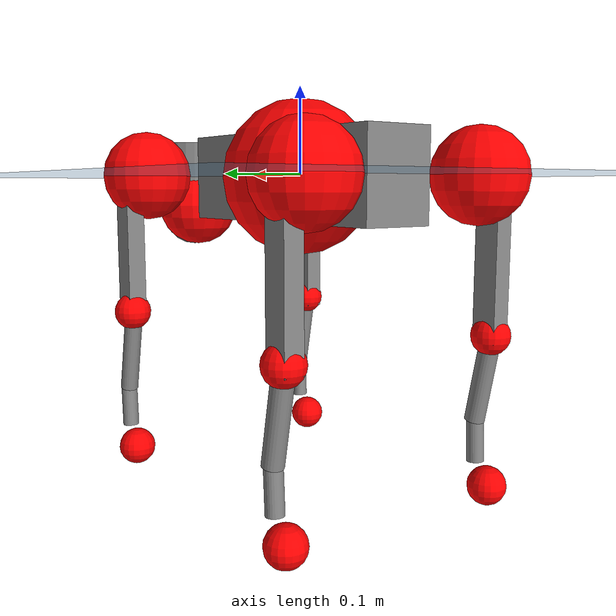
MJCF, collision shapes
<mujoco model="go2">
  <compiler angle="radian" assetdir="assets" balanceinertia="true" inertiafromgeom="false"/>

  <option timestep="0.005" density="1.2" viscosity="2e-05"/>

  <size nkey="1"/>

  <visual>
    <quality shadowsize="8192"/>
    <map shadowclip="0.5"/>
  </visual>

  <default>
    <default class="/">
      <geom contype="0" conaffinity="0" group="1" solref="-1000 -80"/>
      <site size="0.01 0.005 0.005" group="5"/>
      <general forcelimited="true" biastype="affine" gainprm="20" biasprm="0 -20 -0.5"/>
      <default class="go2">
        <joint armature="0.01" damping="0.01" frictionloss="0.2"/>
        <geom condim="1" margin="0.001"/>
        <default class="visual">
          <geom type="mesh" group="2"/>
        </default>
        <default class="collision">
          <geom group="3"/>
          <default class="foot">
            <geom size="0.022 0 0" condim="6" priority="1" friction="0.8 0.02 0.01" solimp="0.015 1 0.022"/>
          </default>
        </default>
        <default class="reward_collision_sphere">
          <geom group="5" rgba="1 0 0 1"/>
        </default>
      </default>
    </default>
  </default>

  <asset>
    <texture type="skybox" colorspace="auto" name="//unnamed_texture_0" builtin="gradient" rgb1="0.95 0.95 0.95" rgb2="0.95 0.95 0.95" width="100" height="600"/>
    <texture type="2d" colorspace="auto" name="texplane" builtin="checker" rgb1="0.345 0.575 0.748" rgb2="0.345 0.575 0.748" markrgb="1 1 1" width="512" height="512"/>
    <material name="MatPlane" class="/" texture="texplane" texuniform="true" texrepeat="2 2" specular="0.9"/>
    <material name="metal" class="/" rgba="0.9 0.95 0.95 1"/>
    <material name="black" class="/" rgba="0 0 0 1"/>
    <material name="white" class="/"/>
    <material name="gray" class="/" rgba="0.671705 0.692426 0.77427 1"/>
    <mesh name="base_0" class="/" file="base_0.obj"/>
    <mesh name="base_1" class="/" file="base_1.obj"/>
    <mesh name="base_2" class="/" file="base_2.obj"/>
    <mesh name="base_3" class="/" file="base_3.obj"/>
    <mesh name="base_4" class="/" file="base_4.obj"/>
    <mesh name="hip_0" class="/" file="hip_0.obj"/>
    <mesh name="hip_1" class="/" file="hip_1.obj"/>
    <mesh name="thigh_0" class="/" file="thigh_0.obj"/>
    <mesh name="thigh_1" class="/" file="thigh_1.obj"/>
    <mesh name="thigh_mirror_0" class="/" file="thigh_mirror_0.obj"/>
    <mesh name="thigh_mirror_1" class="/" file="thigh_mirror_1.obj"/>
    <mesh name="calf_0" class="/" file="calf_0.obj"/>
    <mesh name="calf_1" class="/" file="calf_1.obj"/>
    <mesh name="calf_mirror_0" class="/" file="calf_mirror_0.obj"/>
    <mesh name="calf_mirror_1" class="/" file="calf_mirror_1.obj"/>
    <mesh name="foot" class="/" file="foot.obj"/>
  </asset>

  <worldbody>
    <geom name="floor" class="/" size="100 100 0.125" type="plane" group="0" material="MatPlane"/>
    <light name="toplight_shadow" class="/" pos="0 0 5" dir="0.0990148 0.0990148 -0.990148" type="directional" ambient="0.04 0.04 0.04" diffuse="0.55 0.55 0.55" specular="0.12 0.12 0.12"/>
    <light name="toplight_fill" class="/" pos="0 0 5" dir="0.0990148 0.0990148 -0.990148" type="directional" castshadow="false" ambient="0.04 0.04 0.04" diffuse="0.3 0.3 0.3" specular="0.08 0.08 0.08"/>
    <body name="trunk" childclass="go2" pos="0.000132769 -0.000146841 -0.0028261" quat="1 -0.000191752 -2.69023e-05 8.27534e-06">
      <inertial pos="0.0176577 0.00162566 -0.00182296" quat="-0.00067403 0.713303 -0.00207304 0.700852" mass="4.8879" diaginertia="0.0602691 0.0876086 0.00906102"/>
      <joint name="//unnamed_joint_0" type="free" armature="0" damping="0" frictionloss="0"/>
      <geom name="//unnamed_geom_1" class="visual" material="black" mesh="base_0"/>
      <geom name="//unnamed_geom_2" class="visual" material="black" mesh="base_1"/>
      <geom name="//unnamed_geom_3" class="visual" material="black" mesh="base_2"/>
      <geom name="//unnamed_geom_4" class="visual" material="white" mesh="base_3"/>
      <geom name="//unnamed_geom_5" class="visual" material="gray" mesh="base_4"/>
      <geom name="trunk_1" class="collision" size="0.169414 0.0421059 0.0513377" type="box"/>
      <geom name="trunk_2" class="collision" size="0.045033 0.0405297" pos="0.254187 0 0.00823783" type="cylinder"/>
      <geom name="trunk_3" class="collision" size="0.042331" pos="0.261322 0 -0.049427"/>
      <geom name="//unnamed_geom_9" class="reward_collision_sphere" size="0.0900661"/>
      <geom name="//unnamed_geom_10" class="reward_collision_sphere" size="0.0540396" pos="0.249728 0 -0.0370703"/>
      <site name="imu" pos="-0.015727 -0.0131787 0.0431705" size="0.00900661"/>
      <camera name="track" pos="0 -1.97263 0" quat="0.707107 0.707107 0 0" mode="trackcom"/>
      <camera name="ego_camera" pos="0.278268 0 0.0370703" quat="-0.5 -0.5 0.5 0.5"/>
      <body name="FL_hip" pos="0.172863 0.0431986 0.00238055" quat="1 -0.000204639 0.000105678 0.000135862">
        <inertial pos="-0.00710447 0.00273289 -0.00275614" quat="0.49785 0.496915 0.504244 0.500958" mass="0.486556" diaginertia="0.000494409 0.000532504 0.000186158"/>
        <joint name="FL_hip_joint" pos="0 0 0" axis="0.999989 -0.00133496 -0.00449556" range="-1.08947 1.04218" armature="0.0103271" damping="0.0189171" frictionloss="0.157508"/>
        <geom name="//unnamed_geom_11" class="visual" material="metal" mesh="hip_0"/>
        <geom name="//unnamed_geom_12" class="visual" material="gray" mesh="hip_1"/>
        <geom name="//unnamed_geom_13" class="collision" size="0.0414304 0.0180132" pos="0 0.0789051 0" quat="0.707107 0.707107 0 0" type="cylinder"/>
        <geom name="//unnamed_geom_14" class="reward_collision_sphere" size="0.0540396" pos="0 0.0690419 0"/>
        <body name="FL_thigh" pos="-0.00014036 0.0937817 0.00335181" quat="1 3.87185e-05 -0.000175564 0.000284618">
          <inertial pos="-0.00340935 -0.0221363 -0.0293926" quat="0.829481 0.0863443 -0.0173152 0.551548" mass="0.822469" diaginertia="0.00333972 0.00548076 0.000318775"/>
          <joint name="FL_thigh_joint" pos="0 0 0" axis="0.00845139 0.999884 -0.0126629" range="-1.62772 3.53711" armature="0.00924554" damping="0.00724398" frictionloss="0.170692"/>
          <geom name="//unnamed_geom_15" class="visual" material="metal" mesh="thigh_0"/>
          <geom name="//unnamed_geom_16" class="visual" material="gray" mesh="thigh_1"/>
          <geom name="//unnamed_geom_17" class="collision" size="0.0959203 0.0110331 0.0153112" pos="0 0 -0.0877329" quat="0.707107 0 0.707107 0" type="box"/>
          <body name="FL_calf" pos="-0.0036705 0.00209833 -0.172959" quat="1 -0.000112323 -0.000776314 0.00056783">
            <inertial pos="0.00672915 -0.000515 -0.116205" quat="0.710747 0.00183176 -0.00491162 0.703428" mass="0.166844" diaginertia="0.00083951 0.00135644 1.92215e-05"/>
            <joint name="FL_calf_joint" pos="0 0 0" axis="-0.00416452 0.999948 0.0093153" range="-2.74284 -0.828025" armature="0.00813459" damping="0.0177175" frictionloss="0.154793"/>
            <geom name="//unnamed_geom_18" class="visual" material="gray" mesh="calf_0"/>
            <geom name="//unnamed_geom_19" class="visual" material="black" mesh="calf_1"/>
            <geom name="FL_calf0" class="collision" size="0.0108079 0.0540396" pos="0.00713508 0 -0.049427" quat="0.994493 0 -0.104807 0" type="cylinder"/>
            <geom name="//unnamed_geom_21" class="collision" size="0.00990727 0.0292715" pos="0.0178377 0 -0.12192" quat="0.999688 0 0.0249974 0" type="cylinder"/>
            <geom name="//unnamed_geom_22" class="visual" pos="0 0 -0.175466" quat="1 0 0 0" material="black" mesh="foot"/>
            <geom name="FL_foot" class="foot" size="0.0180523" pos="-0.00178377 0 -0.175466"/>
            <geom name="//unnamed_geom_24" class="reward_collision_sphere" size="0.0225165"/>
            <geom name="//unnamed_geom_25" class="reward_collision_sphere" size="0.0225165" pos="-0.00178377 0 -0.175466"/>
            <site name="FL_foot" class="foot" pos="-0.00178377 0 -0.175466" size="0.00900661"/>
          </body>
        </body>
      </body>
      <body name="FR_hip" pos="0.175387 -0.0485942 0.00081733" quat="0.999999 1.05268e-05 0.000423885 0.00140574">
        <inertial pos="-0.00443688 -0.00266737 2.12906e-05" quat="0.496354 0.504927 0.500834 0.497843" mass="0.487987" diaginertia="0.000491351 0.00052484 0.000181846"/>
        <joint name="FR_hip_joint" pos="0 0 0" axis="0.999993 0.00243781 0.00292471" stiffness="0.0138686" range="-0.996476 1.01077" armature="0.00898543" damping="0.0205136" frictionloss="0.154824"/>
        <geom name="//unnamed_geom_26" class="visual" pos="0 1.4159e-09 6.07307e-08" quat="4.63268e-05 1 0 0" material="metal" mesh="hip_0"/>
        <geom name="//unnamed_geom_27" class="visual" pos="0 2.29534e-09 -1.5021e-07" quat="4.63268e-05 1 0 0" material="gray" mesh="hip_1"/>
        <geom name="//unnamed_geom_28" class="collision" size="0.0414304 0.0180132" pos="0 -0.0789051 0" quat="0.707107 0.707107 0 0" type="cylinder"/>
        <geom name="//unnamed_geom_29" class="reward_collision_sphere" size="0.0540396" pos="0 -0.0690419 0"/>
        <body name="FR_thigh" pos="0.00154933 -0.0917143 -0.00045704" quat="1 -0.000450678 0.00049934 -0.000128724">
          <inertial pos="-0.00433821 0.0229227 -0.0267255" quat="0.552276 -0.0190455 0.0825418 0.829346" mass="0.827281" diaginertia="0.00332097 0.00538337 0.000336858"/>
          <joint name="FR_thigh_joint" pos="0 0 0" axis="-0.00202317 -0.999998 -0.00016431" range="-3.4716 1.5309" armature="0.00901265" damping="0" frictionloss="0.178828"/>
          <geom name="//unnamed_geom_30" class="visual" material="metal" mesh="thigh_mirror_0"/>
          <geom name="//unnamed_geom_31" class="visual" material="gray" mesh="thigh_mirror_1"/>
          <geom name="//unnamed_geom_32" class="collision" size="0.0959203 0.0110331 0.0153112" pos="0 0 -0.0877329" quat="0.707107 0 0.707107 0" type="box"/>
          <body name="FR_calf" pos="0.00182457 0.0013039 -0.172317" quat="1 8.53924e-05 -1.30692e-05 4.97304e-06">
            <inertial pos="0.00404764 0.000547372 -0.115314" quat="0.704873 -0.00175972 0.00422541 0.709319" mass="0.175664" diaginertia="0.000874849 0.00137802 2.03231e-05"/>
            <joint name="FR_calf_joint" pos="0 0 0" axis="-0.00126856 -0.999999 0.000433098" range="0.853479 2.67" armature="0.00877577" damping="0.00648287" frictionloss="0.171497"/>
            <geom name="//unnamed_geom_33" class="visual" material="gray" mesh="calf_mirror_0"/>
            <geom name="//unnamed_geom_34" class="visual" material="black" mesh="calf_mirror_1"/>
            <geom name="FR_calf0" class="collision" size="0.0117086 0.0540396" pos="0.00891885 0 -0.049427" quat="0.995004 0 -0.0998334 0" type="cylinder"/>
            <geom name="//unnamed_geom_36" class="collision" size="0.00990727 0.0292715" pos="0.0178377 0 -0.12192" quat="0.999688 0 0.0249974 0" type="cylinder"/>
            <geom name="//unnamed_geom_37" class="visual" pos="0 0 -0.175466" quat="1 0 0 0" material="black" mesh="foot"/>
            <geom name="FR_foot" class="foot" size="0.022062" pos="-0.00178377 0 -0.175466"/>
            <geom name="//unnamed_geom_39" class="reward_collision_sphere" size="0.0225165"/>
            <geom name="//unnamed_geom_40" class="reward_collision_sphere" size="0.0225165" pos="-0.00178377 0 -0.175466"/>
            <site name="FR_foot" class="foot" pos="-0.00178377 0 -0.175466" size="0.00900661"/>
          </body>
        </body>
      </body>
      <body name="RL_hip" pos="-0.17249 0.0487891 0.000928017" quat="1 -0.000795063 -0.000251083 0.000119541">
        <inertial pos="0.00235233 -0.000285683 -0.000268556" quat="0.506433 0.499159 0.494364 0.499971" mass="0.489619" diaginertia="0.000506564 0.000575118 0.000176893"/>
        <joint name="RL_hip_joint" pos="0 0 0" axis="-0.999712 0.020831 -0.0118868" range="-1.04495 0.99711" armature="0.00890929" damping="0" frictionloss="0.202828"/>
        <geom name="//unnamed_geom_41" class="visual" pos="-5.93272e-10 0 -1.16295e-07" quat="4.63268e-05 0 1 0" material="metal" mesh="hip_0"/>
        <geom name="//unnamed_geom_42" class="visual" pos="-9.61764e-10 0 -1.03137e-07" quat="4.63268e-05 0 1 0" material="gray" mesh="hip_1"/>
        <geom name="//unnamed_geom_43" class="collision" size="0.0414304 0.0180132" pos="0 0.0789051 0" quat="0.707107 0.707107 0 0" type="cylinder"/>
        <geom name="//unnamed_geom_44" class="reward_collision_sphere" size="0.0540396" pos="0 0.0690419 0"/>
        <body name="RL_thigh" pos="0.00097159 0.091483 -1.0053e-05" quat="0.999999 0.000617694 0.00120946 -0.000139303">
          <inertial pos="-0.00463526 -0.0246178 -0.0270116" quat="0.833241 0.0792057 -0.0232594 0.546713" mass="0.833323" diaginertia="0.00345588 0.00539589 0.000351498"/>
          <joint name="RL_thigh_joint" pos="0 0 0" axis="-0.00051462 0.999999 0.000920586" stiffness="0.0155648" range="-0.516408 4.53769" armature="0.00880693" damping="0.000204911" frictionloss="0.177361"/>
          <geom name="//unnamed_geom_45" class="visual" material="metal" mesh="thigh_0"/>
          <geom name="//unnamed_geom_46" class="visual" material="gray" mesh="thigh_1"/>
          <geom name="//unnamed_geom_47" class="collision" size="0.0959203 0.0110331 0.0153112" pos="0 0 -0.0877329" quat="0.707107 0 0.707107 0" type="box"/>
          <body name="RL_calf" pos="0.00267729 -0.000614662 -0.174818" quat="0.999999 -4.28274e-05 0.00103415 0.000885084">
            <inertial pos="0.00834649 -0.00158245 -0.119208" quat="0.710674 0.00160781 -0.00456346 0.703505" mass="0.17268" diaginertia="0.000835759 0.00141174 2.04773e-05"/>
            <joint name="RL_calf_joint" pos="0 0 0" axis="-0.0128669 0.999883 -0.00822323" range="-2.71537 -0.847192" armature="0.0087201" damping="0.0153704" frictionloss="0.201829"/>
            <geom name="//unnamed_geom_48" class="visual" material="gray" mesh="calf_0"/>
            <geom name="//unnamed_geom_49" class="visual" material="black" mesh="calf_1"/>
            <geom name="RL_calf0" class="collision" size="0.0117086 0.0540396" pos="0.00891885 0 -0.049427" quat="0.995004 0 -0.0998334 0" type="cylinder"/>
            <geom name="//unnamed_geom_51" class="collision" size="0.00990727 0.0292715" pos="0.0178377 0 -0.12192" quat="0.999688 0 0.0249974 0" type="cylinder"/>
            <geom name="//unnamed_geom_52" class="visual" pos="0 0 -0.175466" quat="1 0 0 0" material="black" mesh="foot"/>
            <geom name="RL_foot" class="foot" size="0.0170797" pos="-0.00178377 0 -0.175466"/>
            <geom name="//unnamed_geom_54" class="reward_collision_sphere" size="0.0225165"/>
            <geom name="//unnamed_geom_55" class="reward_collision_sphere" size="0.0225165" pos="-0.00178377 0 -0.175466"/>
            <site name="RL_foot" class="foot" pos="-0.00178377 0 -0.175466" size="0.00900661"/>
          </body>
        </body>
      </body>
      <body name="RR_hip" pos="-0.173228 -0.0431935 0.00107484" quat="0.999999 0.000955912 -0.000187547 0.000405126">
        <inertial pos="0.00461823 0.000693067 -0.00199947" quat="0.496624 0.500182 0.495842 0.507271" mass="0.474006" diaginertia="0.000498077 0.000520334 0.000176337"/>
        <joint name="RR_hip_joint" pos="0 0 0" axis="-0.999908 0.00466094 0.0127754" range="-1.09728 1.04815" armature="0.00787777" damping="0" frictionloss="0.205342"/>
        <geom name="//unnamed_geom_56" class="visual" pos="5.96541e-10 1.4159e-09 -1.77026e-07" quat="2.14617e-09 4.63268e-05 4.63268e-05 -1" material="metal" mesh="hip_0"/>
        <geom name="//unnamed_geom_57" class="visual" pos="9.53678e-10 2.29534e-09 4.70732e-08" quat="2.14617e-09 4.63268e-05 4.63268e-05 -1" material="gray" mesh="hip_1"/>
        <geom name="//unnamed_geom_58" class="collision" size="0.0414304 0.0180132" pos="0 -0.0789051 0" quat="0.707107 0.707107 0 0" type="cylinder"/>
        <geom name="//unnamed_geom_59" class="reward_collision_sphere" size="0.0540396" pos="0 -0.0690419 0"/>
        <body name="RR_thigh" pos="0.000925685 -0.0951343 -0.00130294" quat="1 -8.45275e-05 -0.00010601 -5.32377e-05">
          <inertial pos="-0.00317669 0.0229014 -0.0242806" quat="0.552867 -0.0309051 0.0769392 0.829134" mass="0.830455" diaginertia="0.00335727 0.0053996 0.000334079"/>
          <joint name="RR_thigh_joint" pos="0 0 0" axis="-0.00727485 -0.999961 -0.00503671" stiffness="0.0106856" range="-4.49946 0.485361" armature="0.00950202" damping="0.0180924" frictionloss="0.18982"/>
          <geom name="//unnamed_geom_60" class="visual" material="metal" mesh="thigh_mirror_0"/>
          <geom name="//unnamed_geom_61" class="visual" material="gray" mesh="thigh_mirror_1"/>
          <geom name="//unnamed_geom_62" class="collision" size="0.0959203 0.0110331 0.0153112" pos="0 0 -0.0877329" quat="0.707107 0 0.707107 0" type="box"/>
          <body name="RR_calf" pos="0.000772113 -0.0027832 -0.176386" quat="0.999999 -0.000782092 -0.00091252 0.000808685">
            <inertial pos="0.00785408 0.000785076 -0.117206" quat="0.699234 0.000346557 0.00145508 0.714892" mass="0.166445" diaginertia="0.000811745 0.00130724 1.97398e-05"/>
            <joint name="RR_calf_joint" pos="0 0 0" axis="0.0053097 -0.999965 -0.00648507" stiffness="0.00562339" range="0.888714 2.76881" armature="0.00930834" damping="0.0157935" frictionloss="0.173133"/>
            <geom name="//unnamed_geom_63" class="visual" material="gray" mesh="calf_mirror_0"/>
            <geom name="//unnamed_geom_64" class="visual" material="black" mesh="calf_mirror_1"/>
            <geom name="RR_calf0" class="collision" size="0.0117086 0.0540396" pos="0.00891885 0 -0.049427" quat="0.995004 0 -0.0998334 0" type="cylinder"/>
            <geom name="//unnamed_geom_66" class="collision" size="0.00990727 0.0292715" pos="0.0178377 0 -0.12192" quat="0.999688 0 0.0249974 0" type="cylinder"/>
            <geom name="//unnamed_geom_67" class="visual" pos="0 0 -0.175466" quat="1 0 0 0" material="black" mesh="foot"/>
            <geom name="RR_foot" class="foot" size="0.019591" pos="-0.00178377 0 -0.175466"/>
            <geom name="//unnamed_geom_69" class="reward_collision_sphere" size="0.0225165"/>
            <geom name="//unnamed_geom_70" class="reward_collision_sphere" size="0.0225165" pos="-0.00178377 0 -0.175466"/>
            <site name="RR_foot" class="foot" pos="-0.00178377 0 -0.175466" size="0.00900661"/>
          </body>
        </body>
      </body>
    </body>
  </worldbody>

  <contact>
    <pair class="/" geom1="floor" geom2="FL_foot" name="//unnamed_contact_0"/>
    <pair class="/" geom1="floor" geom2="FR_foot" name="//unnamed_contact_1"/>
    <pair class="/" geom1="floor" geom2="RL_foot" name="//unnamed_contact_2"/>
    <pair class="/" geom1="floor" geom2="RR_foot" name="//unnamed_contact_3"/>
  </contact>

  <actuator>
    <general name="FL_hip" class="/" joint="FL_hip_joint" forcerange="-19.1951 19.1951" gainprm="18.8784" biasprm="0 -18.8784 -0.473261"/>
    <general name="FL_thigh" class="/" joint="FL_thigh_joint" forcerange="-20.5757 20.5757" gainprm="18.8784" biasprm="0 -18.8784 -0.473261"/>
    <general name="FL_calf" class="/" joint="FL_calf_joint" forcerange="-41.6964 41.6964" gainprm="18.8784" biasprm="0 -18.8784 -0.473261"/>
    <general name="FR_hip" class="/" joint="FR_hip_joint" forcerange="-20.582 20.582" gainprm="18.8784" biasprm="0 -18.8784 -0.473261"/>
    <general name="FR_thigh" class="/" joint="FR_thigh_joint" forcerange="-22.5544 22.5544" gainprm="18.8784" biasprm="0 -18.8784 -0.473261"/>
    <general name="FR_calf" class="/" joint="FR_calf_joint" forcerange="-37.3795 37.3795" gainprm="18.8784" biasprm="0 -18.8784 -0.473261"/>
    <general name="RL_hip" class="/" joint="RL_hip_joint" forcerange="-23.5924 23.5924" gainprm="18.8784" biasprm="0 -18.8784 -0.473261"/>
    <general name="RL_thigh" class="/" joint="RL_thigh_joint" forcerange="-21.4165 21.4165" gainprm="18.8784" biasprm="0 -18.8784 -0.473261"/>
    <general name="RL_calf" class="/" joint="RL_calf_joint" forcerange="-36.9314 36.9314" gainprm="18.8784" biasprm="0 -18.8784 -0.473261"/>
    <general name="RR_hip" class="/" joint="RR_hip_joint" forcerange="-20.4431 20.4431" gainprm="18.8784" biasprm="0 -18.8784 -0.473261"/>
    <general name="RR_thigh" class="/" joint="RR_thigh_joint" forcerange="-21.6958 21.6958" gainprm="18.8784" biasprm="0 -18.8784 -0.473261"/>
    <general name="RR_calf" class="/" joint="RR_calf_joint" forcerange="-41.491 41.491" gainprm="18.8784" biasprm="0 -18.8784 -0.473261"/>
  </actuator>

  <sensor>
    <gyro site="imu" name="imu_angular_velocity"/>
    <velocimeter site="imu" name="imu_linear_velocity"/>
    <framelinvel objtype="site" objname="FL_foot" name="FL_foot_global_linear_velocity"/>
    <framelinvel objtype="site" objname="FR_foot" name="FR_foot_global_linear_velocity"/>
    <framelinvel objtype="site" objname="RL_foot" name="RL_foot_global_linear_velocity"/>
    <framelinvel objtype="site" objname="RR_foot" name="RR_foot_global_linear_velocity"/>
  </sensor>

  <keyframe>
    <key name="home" qpos="0 0 0.325 1 0 0 0 0.1 0.8 -1.5 -0.1 -0.8 1.5 -0.1 0.8 -1.5 0.1 -0.8 1.5"/>
  </keyframe>
</mujoco>
